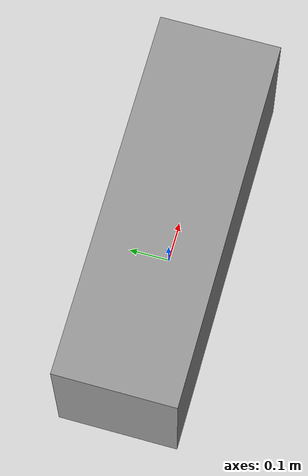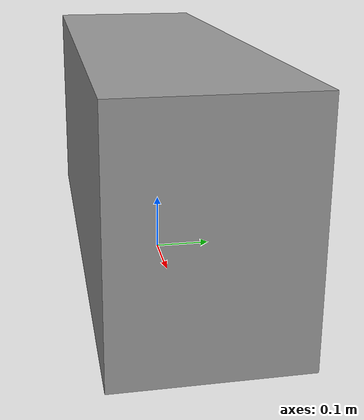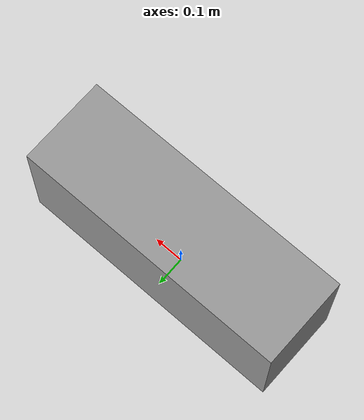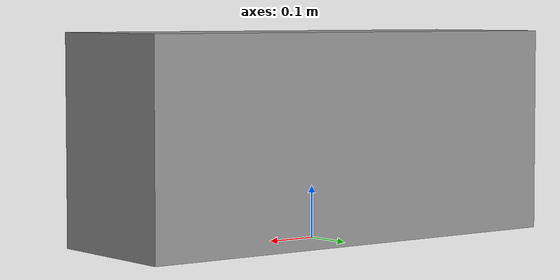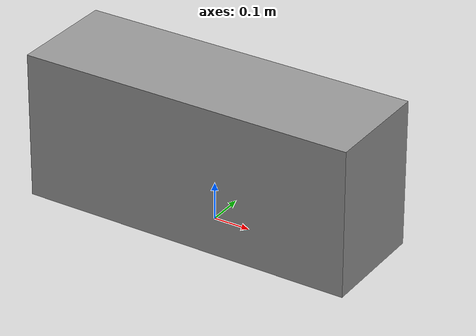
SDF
<?xml version='1.0'?>
<sdf version='1.6'>
  <model name='Box_36x15W'>
     <link name='Wall'>
 	<pose frame=''>0 0 0.1985 0 0 0</pose>
	<inertial>
	  <mass>5</mass>
	   <inertia>
	     <ixx>0.1022</ixx>
	     <iyy>0.4107</iyy>
	     <izz>0.3815</izz>
    	     <ixy>0</ixy>
	     <ixz>0</ixz>
	     <iyz>0</iyz>
	   </inertia>
	</inertial>
      <collision name='Wall_Collision'>
        <geometry>
          <box>
            <size>0.91 0.296 0.397</size>
          </box>
        </geometry>
      </collision>
      <visual name='Wall_Visual'>
          <geometry>
          <box>
            <size>0.91 0.296 0.397</size>
          </box>
        </geometry>
        <material>
          <script>
            <uri>file://media/materials/scripts/gazebo.material</uri>
            <name>Gazebo/Grey</name>
          </script>
          <ambient>1 1 1 1</ambient>
        </material>
      </visual>
    </link>

    <static>1</static>
  </model>
</sdf>
